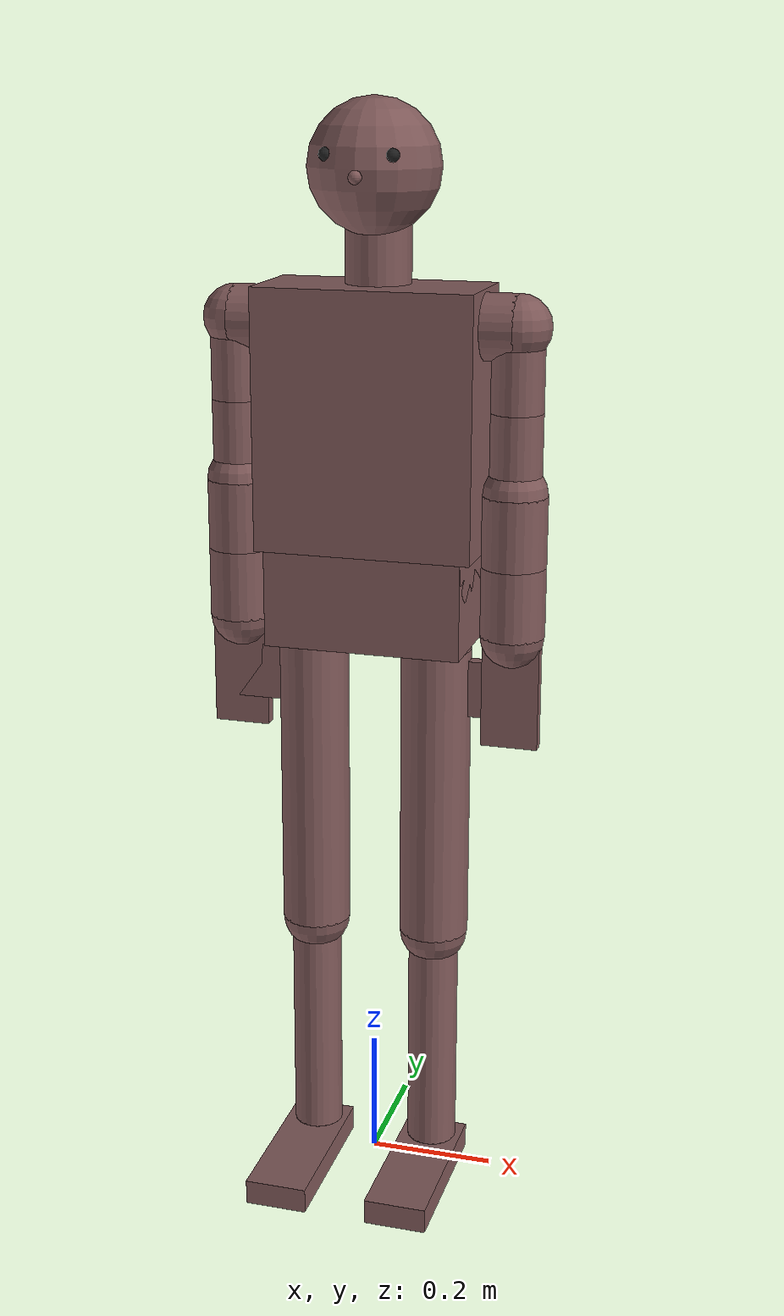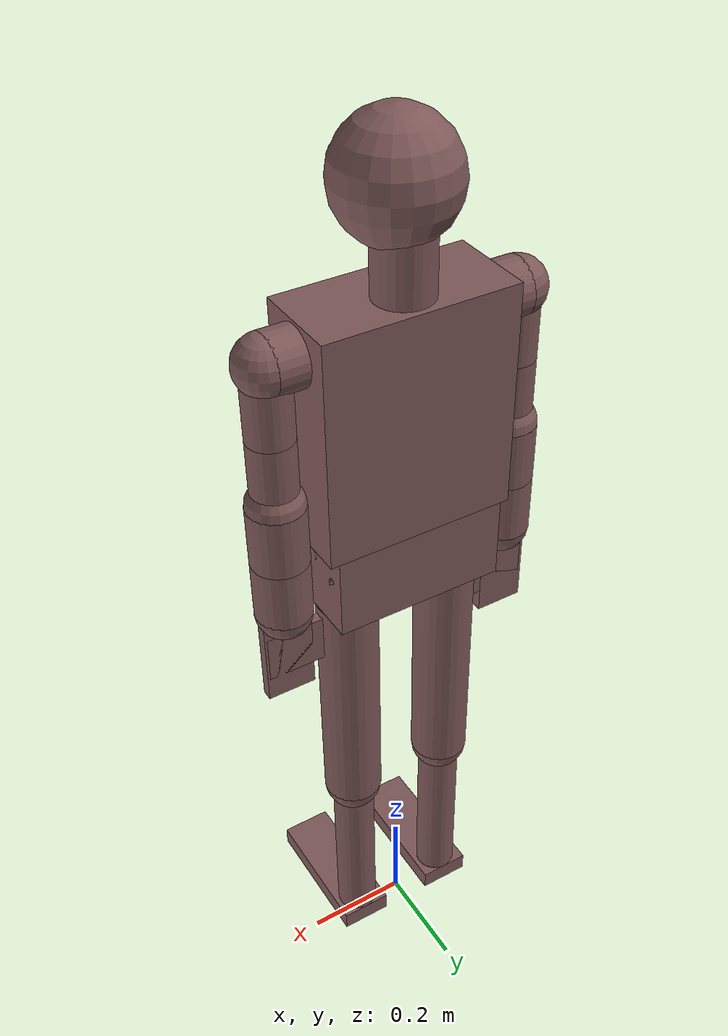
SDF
<?xml version="1.0" ?>
<sdf version="1.5">
  <model name="victim175">
    <static>false</static>
    <self_collide>false</self_collide>

    <link name="head">
      <pose>0 0 1.625 0 0 0</pose>
      <inertial>
        <mass>1.0</mass>
        <inertia>
          <ixx>0.00175</ixx>
          <ixy>0</ixy>
          <ixz>0</ixz>
          <iyy>0.00175</iyy>
          <iyz>0</iyz>
          <izz>0.00175</izz>
        </inertia>
      </inertial>
      <visual name="visual">
        <pose>0 0 0 0 0 0</pose>
        <geometry>
          <sphere><radius>0.1</radius></sphere>
        </geometry>
        <!-- HOT -->
        <material>
          <emissive>0.5 0.35 0.35 1</emissive>
          <ambient>0.5 0.35 0.35 1</ambient>
          <diffuse>0.5 0.35 0.35 1</diffuse>
          <specular>0 0 0 0</specular>
        </material> -->
      </visual>
      <collision name="collision">
        <pose>0 0 0 0 0 0</pose>
        <geometry>
          <sphere><radius>0.1</radius></sphere>
        </geometry>
      </collision>
      <visual name="visual_nose">
        <pose>0 -0.1 -0.01 0 0 0</pose>
        <geometry>
          <sphere><radius>0.01</radius></sphere>
        </geometry>
        <!-- HOT -->
        <material>
          <emissive>0.5 0.35 0.35 1</emissive>
          <ambient>0.5 0.35 0.35 1</ambient>
          <diffuse>0.5 0.35 0.35 1</diffuse>
          <specular>0 0 0 0</specular>
        </material> -->
      </visual>
      <visual name="visual_rEye">
        <pose>-0.05 -0.08 0.02 0 0 0</pose>
        <geometry>
          <sphere><radius>0.01</radius></sphere>
        </geometry>
        <material>
          <script>
            <uri>file://media/materials/scripts/gazebo.material</uri>
            <name>Gazebo/Black</name>
          </script>
        </material>
      </visual>
      <visual name="visual_lEye">
        <pose>0.05 -0.08 0.02 0 0 0</pose>
        <geometry>
          <sphere><radius>0.01</radius></sphere>
        </geometry>
        <material>
          <script>
            <uri>file://media/materials/scripts/gazebo.material</uri>
            <name>Gazebo/Black</name>
          </script>
        </material>
      </visual>
    </link>

    <link name="neck">
      <pose>0 0.02 1.49 0 0 0</pose>
      <inertial>
        <mass>1.0</mass>
        <inertia>
          <ixx>0.00175</ixx>
          <ixy>0</ixy>
          <ixz>0</ixz>
          <iyy>0.00175</iyy>
          <iyz>0</iyz>
          <izz>0.00175</izz>
        </inertia>
      </inertial>
      <visual name="visual">
        <pose>0 0 0 0 0 0</pose>
        <geometry>
          <cylinder><radius>0.05</radius><length>0.15</length></cylinder>
        </geometry>
        <!-- HOT -->
        <material>
          <emissive>0.5 0.35 0.35 1</emissive>
          <ambient>0.5 0.35 0.35 1</ambient>
          <diffuse>0.5 0.35 0.35 1</diffuse>
          <specular>0 0 0 0</specular>
        </material> -->
      </visual>
      <collision name="collision">
        <pose>0 0 0 0 0 0</pose>
        <geometry>
          <cylinder><radius>0.05</radius><length>0.15</length></cylinder>
        </geometry>
      </collision>
    </link>

    <joint type="revolute" name="neck_head">
      <pose>0 0.02 -0.075 0 0 0</pose>
      <child>head</child>
      <parent>neck</parent>
      <axis>
        <xyz>0 0 -1</xyz>
        <limit>
          <lower>-1.7</lower>
          <upper>+1.7</upper>
        </limit>
        <dynamics>
          <friction>0.1</friction>
        </dynamics>
      </axis>
    </joint>

    <link name="body">
      <pose>0 0 1.255 0 0 0</pose>
      <inertial>
        <mass>1.0</mass>
        <inertia>
          <ixx>0.00175</ixx>
          <ixy>0</ixy>
          <ixz>0</ixz>
          <iyy>0.00175</iyy>
          <iyz>0</iyz>
          <izz>0.00175</izz>
        </inertia>
      </inertial>
      <visual name="visual">
        <pose>0 0 0 0 0 0</pose>
        <geometry>
          <box><size>0.34 0.16 0.4</size></box>
        </geometry>
        <!-- HOT -->
        <material>
          <emissive>0.5 0.35 0.35 1</emissive>
          <ambient>0.5 0.35 0.35 1</ambient>
          <diffuse>0.5 0.35 0.35 1</diffuse>
          <specular>0 0 0 0</specular>
        </material> -->
      </visual>
      <collision name="collision">
        <pose>0 0 0 0 0 0</pose>
        <geometry>
          <box><size>0.34 0.16 0.4</size></box>
        </geometry>
      </collision>
    </link>

    <joint type="revolute" name="body_neck">
      <pose>0 0.06 -0.075 0 0 0</pose>
      <child>neck</child>
      <parent>body</parent>
      <axis>
        <xyz>1 0 0</xyz>
        <limit>
          <lower>-0.2</lower>
          <upper>1</upper>
        </limit>
        <dynamics>
          <friction>0.1</friction>
        </dynamics>
      </axis>
    </joint>

    <link name="waist">
      <pose>0 0 1.005 0 0 0</pose>
      <inertial>
        <mass>1.0</mass>
        <inertia>
          <ixx>0.00175</ixx>
          <ixy>0</ixy>
          <ixz>0</ixz>
          <iyy>0.00175</iyy>
          <iyz>0</iyz>
          <izz>0.00175</izz>
        </inertia>
      </inertial>
      <visual name="visual">
        <pose>0 0 -0.025 0 0 0</pose>
        <geometry>
          <box><size>0.31 0.16 0.15</size></box>
        </geometry>
        <!-- HOT -->
        <material>
          <emissive>0.5 0.35 0.35 1</emissive>
          <ambient>0.5 0.35 0.35 1</ambient>
          <diffuse>0.5 0.35 0.35 1</diffuse>
          <specular>0 0 0 0</specular>
        </material> -->
      </visual>
      <collision name="collision">
        <pose>0 0 0 0 0 0</pose>
        <geometry>
          <box><size>0.31 0.16 0.1</size></box>
        </geometry>
      </collision>
      <visual name="visual2">
        <pose>0 0 0.05 0 1.570796326794897 0</pose>
        <geometry>
          <cylinder><radius>0.08</radius><length>0.31</length></cylinder>
        </geometry>
        <!-- HOT -->
        <material>
          <emissive>0.5 0.35 0.35 1</emissive>
          <ambient>0.5 0.35 0.35 1</ambient>
          <diffuse>0.5 0.35 0.35 1</diffuse>
          <specular>0 0 0 0</specular>
        </material> -->
      </visual>
      <collision name="collision2">
        <pose>0 0 0.05 0 1.570796326794897 0</pose>
        <geometry>
          <cylinder><radius>0.08</radius><length>0.31</length></cylinder>
        </geometry>
      </collision>
    </link>

    <joint type="revolute" name="body_waist">
      <pose>0 0 0.05 0 0 0</pose>
      <child>waist</child>
      <parent>body</parent>
      <axis>
        <xyz>-1 0 0</xyz>
        <limit>
          <lower>0</lower>
          <upper>0</upper>
        </limit>
        <dynamics>
          <friction>0.1</friction>
        </dynamics>
      </axis>
    </joint>

    <link name="rHand">
      <pose>-0.22 0 0.84 0 0 0</pose>
      <inertial>
        <mass>1.0</mass>
        <inertia>
          <ixx>0.00175</ixx>
          <ixy>0</ixy>
          <ixz>0</ixz>
          <iyy>0.00175</iyy>
          <iyz>0</iyz>
          <izz>0.00175</izz>
        </inertia>
      </inertial>
      <visual name="visual">
        <pose>0 0 0 0 0 0</pose>
        <geometry>
          <box><size>0.09 0.02 0.18</size></box>
        </geometry>
        <!-- HOT -->
        <material>
          <emissive>0.5 0.35 0.35 1</emissive>
          <ambient>0.5 0.35 0.35 1</ambient>
          <diffuse>0.5 0.35 0.35 1</diffuse>
          <specular>0 0 0 0</specular>
        </material> -->
      </visual>
      <collision name="collision">
        <pose>0 0 0 0 0 0</pose>
        <geometry>
          <box><size>0.09 0.02 0.18</size></box>
        </geometry>
      </collision>
      <visual name="visual2">
        <pose>0.02 0 0 0 0 0</pose>
        <geometry>
          <box><size>0.12 0.02 0.09</size></box>
        </geometry>
        <!-- HOT -->
        <material>
          <emissive>0.5 0.35 0.35 1</emissive>
          <ambient>0.5 0.35 0.35 1</ambient>
          <diffuse>0.5 0.35 0.35 1</diffuse>
          <specular>0 0 0 0</specular>
        </material> -->
      </visual>
      <collision name="collision2">
        <pose>0.02 0 0 0 0 0</pose>
        <geometry>
          <box><size>0.12 0.02 0.09</size></box>
        </geometry>
      </collision>
    </link>

    <link name="lHand">
      <pose>0.22 0 0.84 0 0 0</pose>
      <inertial>
        <mass>1.0</mass>
        <inertia>
          <ixx>0.00175</ixx>
          <ixy>0</ixy>
          <ixz>0</ixz>
          <iyy>0.00175</iyy>
          <iyz>0</iyz>
          <izz>0.00175</izz>
        </inertia>
      </inertial>
      <visual name="visual">
        <pose>0 0 0 0 0 0</pose>
        <geometry>
          <box><size>0.09 0.02 0.18</size></box>
        </geometry>
        <!-- HOT -->
        <material>
          <emissive>0.5 0.35 0.35 1</emissive>
          <ambient>0.5 0.35 0.35 1</ambient>
          <diffuse>0.5 0.35 0.35 1</diffuse>
          <specular>0 0 0 0</specular>
        </material> -->
      </visual>
      <collision name="collision">
        <pose>0 0 0 0 0 0</pose>
        <geometry>
          <box><size>0.09 0.02 0.18</size></box>
        </geometry>
      </collision>
      <visual name="visual2">
        <pose>-0.02 0 0 0 0 0</pose>
        <geometry>
          <box><size>0.12 0.02 0.09</size></box>
        </geometry>
        <!-- HOT -->
        <material>
          <emissive>0.5 0.35 0.35 1</emissive>
          <ambient>0.5 0.35 0.35 1</ambient>
          <diffuse>0.5 0.35 0.35 1</diffuse>
          <specular>0 0 0 0</specular>
        </material> -->
      </visual>
      <collision name="collision2">
        <pose>-0.02 0 0 0 0 0</pose>
        <geometry>
          <box><size>0.12 0.02 0.09</size></box>
        </geometry>
      </collision>
    </link>

    <link name="rFoot">
      <pose>-0.1 -0.095 0.02 0 0 0</pose>
      <inertial>
        <mass>1.0</mass>
        <inertia>
          <ixx>0.00175</ixx>
          <ixy>0</ixy>
          <ixz>0</ixz>
          <iyy>0.00175</iyy>
          <iyz>0</iyz>
          <izz>0.00175</izz>
        </inertia>
      </inertial>
      <visual name="visual">
        <pose>0 0 0 0 0 0</pose>
        <geometry>
          <box><size>0.1 0.27 0.04</size></box>
        </geometry>
        <!-- HOT -->
        <material>
          <emissive>0.5 0.35 0.35 1</emissive>
          <ambient>0.5 0.35 0.35 1</ambient>
          <diffuse>0.5 0.35 0.35 1</diffuse>
          <specular>0 0 0 0</specular>
        </material> -->
      </visual>
      <collision name="collision">
        <pose>0 0 0 0 0 0</pose>
        <geometry>
          <box><size>0.1 0.27 0.04</size></box>
        </geometry>
      </collision>
    </link>

    <link name="lFoot">
      <pose>0.1 -0.095 0.02 0 0 0</pose>
      <inertial>
        <mass>1.0</mass>
        <inertia>
          <ixx>0.00175</ixx>
          <ixy>0</ixy>
          <ixz>0</ixz>
          <iyy>0.00175</iyy>
          <iyz>0</iyz>
          <izz>0.00175</izz>
        </inertia>
      </inertial>
      <visual name="visual">
        <pose>0 0 0 0 0 0</pose>
        <geometry>
          <box><size>0.1 0.27 0.04</size></box>
        </geometry>
        <!-- HOT -->
        <material>
          <emissive>0.5 0.35 0.35 1</emissive>
          <ambient>0.5 0.35 0.35 1</ambient>
          <diffuse>0.5 0.35 0.35 1</diffuse>
          <specular>0 0 0 0</specular>
        </material> -->
      </visual>
      <collision name="collision">
        <pose>0 0 0 0 0 0</pose>
        <geometry>
          <box><size>0.1 0.27 0.04</size></box>
        </geometry>
      </collision>
    </link>

    <link name="rLeg2">
      <pose>-0.1 0 0.23 0 0 0</pose>
      <inertial>
        <mass>1.0</mass>
        <inertia>
          <ixx>0.00175</ixx>
          <ixy>0</ixy>
          <ixz>0</ixz>
          <iyy>0.00175</iyy>
          <iyz>0</iyz>
          <izz>0.00175</izz>
        </inertia>
      </inertial>
      <visual name="visual">
        <pose>0 0 0 0 0 0</pose>
        <geometry>
          <cylinder><radius>0.04</radius><length>0.38</length></cylinder>
        </geometry>
        <!-- HOT -->
        <material>
          <emissive>0.5 0.35 0.35 1</emissive>
          <ambient>0.5 0.35 0.35 1</ambient>
          <diffuse>0.5 0.35 0.35 1</diffuse>
          <specular>0 0 0 0</specular>
        </material> -->
      </visual>
      <collision name="collision">
        <pose>0 0 0 0 0 0</pose>
        <geometry>
          <cylinder><radius>0.04</radius><length>0.38</length></cylinder>
        </geometry>
      </collision>
      <visual name="visual2">
        <pose>0 0 -0.19 0 0 0</pose>
        <geometry>
          <sphere><radius>0.04</radius></sphere>
        </geometry>
        <!-- HOT -->
        <material>
          <emissive>0.5 0.35 0.35 1</emissive>
          <ambient>0.5 0.35 0.35 1</ambient>
          <diffuse>0.5 0.35 0.35 1</diffuse>
          <specular>0 0 0 0</specular>
        </material> -->
      </visual>
      <collision name="collision2">
        <pose>0 0 -0.19 0 0 0</pose>
        <geometry>
          <sphere><radius>0.04</radius></sphere>
        </geometry>
      </collision>
    </link>

    <link name="lLeg2">
      <pose>0.1 0 0.23 0 0 0</pose>
      <inertial>
        <mass>1.0</mass>
        <inertia>
          <ixx>0.00175</ixx>
          <ixy>0</ixy>
          <ixz>0</ixz>
          <iyy>0.00175</iyy>
          <iyz>0</iyz>
          <izz>0.00175</izz>
        </inertia>
      </inertial>
      <visual name="visual">
        <pose>0 0 0 0 0 0</pose>
        <geometry>
          <cylinder><radius>0.04</radius><length>0.38</length></cylinder>
        </geometry>
        <!-- HOT -->
        <material>
          <emissive>0.5 0.35 0.35 1</emissive>
          <ambient>0.5 0.35 0.35 1</ambient>
          <diffuse>0.5 0.35 0.35 1</diffuse>
          <specular>0 0 0 0</specular>
        </material> -->
      </visual>
      <collision name="collision">
        <pose>0 0 0 0 0 0</pose>
        <geometry>
          <cylinder><radius>0.04</radius><length>0.38</length></cylinder>
        </geometry>
      </collision>
      <visual name="visual2">
        <pose>0 0 -0.19 0 0 0</pose>
        <geometry>
          <sphere><radius>0.04</radius></sphere>
        </geometry>
        <!-- HOT -->
        <material>
          <emissive>0.5 0.35 0.35 1</emissive>
          <ambient>0.5 0.35 0.35 1</ambient>
          <diffuse>0.5 0.35 0.35 1</diffuse>
          <specular>0 0 0 0</specular>
        </material> -->
      </visual>
      <collision name="collision2">
        <pose>0 0 -0.19 0 0 0</pose>
        <geometry>
          <sphere><radius>0.04</radius></sphere>
        </geometry>
      </collision>
    </link>

    <joint type="revolute" name="rLeg2_rFoot">
      <pose>0 0.095 0.02 0 0 0</pose>
      <child>rFoot</child>
      <parent>rLeg2</parent>
      <axis>
        <xyz>1 0 0</xyz>
        <limit>
          <lower>0</lower>
          <upper>0</upper>
        </limit>
        <dynamics>
          <friction>0.1</friction>
        </dynamics>
      </axis>
    </joint>

    <joint type="revolute" name="lLeg2_lFoot">
      <pose>0 0.095 0.02 0 0 0</pose>
      <child>lFoot</child>
      <parent>lLeg2</parent>
      <axis>
        <xyz>1 0 0</xyz>
        <limit>
          <lower>0</lower>
          <upper>0</upper>
        </limit>
        <dynamics>
          <friction>0.1</friction>
        </dynamics>
      </axis>
    </joint>

    <link name="rLeg1">
      <pose>-0.1 0 0.66 0 0 0</pose>
      <inertial>
        <mass>1.0</mass>
        <inertia>
          <ixx>0.00175</ixx>
          <ixy>0</ixy>
          <ixz>0</ixz>
          <iyy>0.00175</iyy>
          <iyz>0</iyz>
          <izz>0.00175</izz>
        </inertia>
      </inertial>
      <visual name="visual">
        <pose>0 0 0 0 0 0</pose>
        <geometry>
          <cylinder><radius>0.055</radius><length>0.48</length></cylinder>
        </geometry>
        <!-- HOT -->
        <material>
          <emissive>0.5 0.35 0.35 1</emissive>
          <ambient>0.5 0.35 0.35 1</ambient>
          <diffuse>0.5 0.35 0.35 1</diffuse>
          <specular>0 0 0 0</specular>
        </material> -->
      </visual>
      <collision name="collision">
        <pose>0 0 0 0 0 0</pose>
        <geometry>
          <cylinder><radius>0.055</radius><length>0.48</length></cylinder>
        </geometry>
      </collision>
      <visual name="visual2">
        <pose>0 0 -0.24 0 0 0</pose>
        <geometry>
          <sphere><radius>0.055</radius></sphere>
        </geometry>
        <!-- HOT -->
        <material>
          <emissive>0.5 0.35 0.35 1</emissive>
          <ambient>0.5 0.35 0.35 1</ambient>
          <diffuse>0.5 0.35 0.35 1</diffuse>
          <specular>0 0 0 0</specular>
        </material> -->
      </visual>
      <collision name="collision2">
        <pose>0 0 -0.24 0 0 0</pose>
        <geometry>
          <sphere><radius>0.055</radius></sphere>
        </geometry>
      </collision>
      <visual name="visual3">
        <pose>0 0 0.24 0 0 0</pose>
        <geometry>
          <sphere><radius>0.055</radius></sphere>
        </geometry>
        <!-- HOT -->
        <material>
          <emissive>0.5 0.35 0.35 1</emissive>
          <ambient>0.5 0.35 0.35 1</ambient>
          <diffuse>0.5 0.35 0.35 1</diffuse>
          <specular>0 0 0 0</specular>
        </material> -->
      </visual>
      <collision name="collision3">
        <pose>0 0 0.24 0 0 0</pose>
        <geometry>
          <sphere><radius>0.055</radius></sphere>
        </geometry>
      </collision>
    </link>

    <link name="lLeg1">
      <pose>0.1 0 0.66 0 0 0</pose>
      <inertial>
        <mass>1.0</mass>
        <inertia>
          <ixx>0.00175</ixx>
          <ixy>0</ixy>
          <ixz>0</ixz>
          <iyy>0.00175</iyy>
          <iyz>0</iyz>
          <izz>0.00175</izz>
        </inertia>
      </inertial>
      <visual name="visual">
        <pose>0 0 0 0 0 0</pose>
        <geometry>
          <cylinder><radius>0.055</radius><length>0.48</length></cylinder>
        </geometry>
        <!-- HOT -->
        <material>
          <emissive>0.5 0.35 0.35 1</emissive>
          <ambient>0.5 0.35 0.35 1</ambient>
          <diffuse>0.5 0.35 0.35 1</diffuse>
          <specular>0 0 0 0</specular>
        </material> -->
      </visual>
      <collision name="collision">
        <pose>0 0 0 0 0 0</pose>
        <geometry>
          <cylinder><radius>0.055</radius><length>0.48</length></cylinder>
        </geometry>
      </collision>
      <visual name="visual2">
        <pose>0 0 -0.24 0 0 0</pose>
        <geometry>
          <sphere><radius>0.055</radius></sphere>
        </geometry>
        <!-- HOT -->
        <material>
          <emissive>0.5 0.35 0.35 1</emissive>
          <ambient>0.5 0.35 0.35 1</ambient>
          <diffuse>0.5 0.35 0.35 1</diffuse>
          <specular>0 0 0 0</specular>
        </material> -->
      </visual>
      <collision name="collision2">
        <pose>0 0 -0.24 0 0 0</pose>
        <geometry>
          <sphere><radius>0.055</radius></sphere>
        </geometry>
      </collision>
      <visual name="visual3">
        <pose>0 0 0.24 0 0 0</pose>
        <geometry>
          <sphere><radius>0.055</radius></sphere>
        </geometry>
        <!-- HOT -->
        <material>
          <emissive>0.5 0.35 0.35 1</emissive>
          <ambient>0.5 0.35 0.35 1</ambient>
          <diffuse>0.5 0.35 0.35 1</diffuse>
          <specular>0 0 0 0</specular>
        </material> -->
      </visual>
      <collision name="collision3">
        <pose>0 0 0.24 0 0 0</pose>
        <geometry>
          <sphere><radius>0.055</radius></sphere>
        </geometry>
      </collision>
    </link>

    <joint type="revolute" name="rLeg1_rLeg2">
      <pose>0 0 0.19 0 0 0</pose>
      <child>rLeg2</child>
      <parent>rLeg1</parent>
      <axis>
        <xyz>1 0 0</xyz>
        <limit>
          <lower>0</lower>
          <upper>0</upper>
        </limit>
        <dynamics>
          <friction>0.1</friction>
        </dynamics>
      </axis>
    </joint>

    <joint type="revolute" name="lLeg1_lLeg2">
      <pose>0 0 0.19 0 0 0</pose>
      <child>lLeg2</child>
      <parent>lLeg1</parent>
      <axis>
        <xyz>1 0 0</xyz>
        <limit>
          <lower>0</lower>
          <upper>0</upper>
        </limit>
        <dynamics>
          <friction>0.1</friction>
        </dynamics>
      </axis>
    </joint>

    <link name="rButt">
      <pose>-0.1 0 0.9275 0 0 0</pose>
      <inertial>
        <mass>1.0</mass>
        <inertia>
          <ixx>0.00175</ixx>
          <ixy>0</ixy>
          <ixz>0</ixz>
          <iyy>0.00175</iyy>
          <iyz>0</iyz>
          <izz>0.00175</izz>
        </inertia>
      </inertial>
      <visual name="visual">
        <pose>0 0 0 0 0 0</pose>
        <geometry>
          <cylinder><radius>0.055</radius><length>0.055</length></cylinder>
        </geometry>
        <!-- HOT -->
        <material>
          <emissive>0.5 0.35 0.35 1</emissive>
          <ambient>0.5 0.35 0.35 1</ambient>
          <diffuse>0.5 0.35 0.35 1</diffuse>
          <specular>0 0 0 0</specular>
        </material> -->
      </visual>
      <collision name="collision">
        <pose>0 0 0 0 0 0</pose>
        <geometry>
          <cylinder><radius>0.055</radius><length>0.055</length></cylinder>
        </geometry>
      </collision>
    </link>

    <link name="lButt">
      <pose>0.1 0 0.9275 0 0 0</pose>
      <inertial>
        <mass>1.0</mass>
        <inertia>
          <ixx>0.00175</ixx>
          <ixy>0</ixy>
          <ixz>0</ixz>
          <iyy>0.00175</iyy>
          <iyz>0</iyz>
          <izz>0.00175</izz>
        </inertia>
      </inertial>
      <visual name="visual">
        <pose>0 0 0 0 0 0</pose>
        <geometry>
          <cylinder><radius>0.055</radius><length>0.055</length></cylinder>
        </geometry>
        <!-- HOT -->
        <material>
          <emissive>0.5 0.35 0.35 1</emissive>
          <ambient>0.5 0.35 0.35 1</ambient>
          <diffuse>0.5 0.35 0.35 1</diffuse>
          <specular>0 0 0 0</specular>
        </material> -->
      </visual>
      <collision name="collision">
        <pose>0 0 0 0 0 0</pose>
        <geometry>
          <cylinder><radius>0.055</radius><length>0.055</length></cylinder>
        </geometry>
      </collision>
    </link>

    <joint type="revolute" name="rButt_rLeg1">
      <pose>0 0 0.24 0 0 0</pose>
      <child>rLeg1</child>
      <parent>rButt</parent>
      <axis>
        <xyz>1 0 0</xyz>
        <limit>
          <lower>0</lower>
          <upper>0</upper>
        </limit>
        <dynamics>
          <friction>0.1</friction>
        </dynamics>
      </axis>
    </joint>

    <joint type="revolute" name="lButt_lLeg1">
      <pose>0 0 0.24 0 0 0</pose>
      <child>lLeg1</child>
      <parent>lButt</parent>
      <axis>
        <xyz>1 0 0</xyz>
        <limit>
          <lower>0</lower>
          <upper>0</upper>
        </limit>
        <dynamics>
          <friction>0.1</friction>
        </dynamics>
      </axis>
    </joint>

    <joint type="revolute" name="waist_rButt">
      <pose>0 0 0 0 0 0</pose>
      <child>rButt</child>
      <parent>waist</parent>
      <axis>
        <xyz>0 0 -1</xyz>
        <limit>
          <lower>0</lower>
          <upper>0</upper>
        </limit>
        <dynamics>
          <friction>0.1</friction>
        </dynamics>
      </axis>
    </joint>

    <joint type="revolute" name="waist_lButt">
      <pose>0 0 0 0 0 0</pose>
      <child>lButt</child>
      <parent>waist</parent>
      <axis>
        <xyz>0 0 1</xyz>
        <limit>
          <lower>0</lower>
          <upper>0</upper>
        </limit>
        <dynamics>
          <friction>0.1</friction>
        </dynamics>
      </axis>
    </joint>

    <link name="rShoulder">
      <pose>-0.195 0 1.4 0 0 0</pose>
      <inertial>
        <mass>1.0</mass>
        <inertia>
          <ixx>0.00175</ixx>
          <ixy>0</ixy>
          <ixz>0</ixz>
          <iyy>0.00175</iyy>
          <iyz>0</iyz>
          <izz>0.00175</izz>
        </inertia>
      </inertial>
      <visual name="visual">
        <pose>0 0 0 0 1.570796326794897 0</pose>
        <geometry>
          <cylinder><radius>0.05</radius><length>0.05</length></cylinder>
        </geometry>
        <!-- HOT -->
        <material>
          <emissive>0.5 0.35 0.35 1</emissive>
          <ambient>0.5 0.35 0.35 1</ambient>
          <diffuse>0.5 0.35 0.35 1</diffuse>
          <specular>0 0 0 0</specular>
        </material> -->
      </visual>
      <collision name="collision">
        <pose>0 0 0 0 1.570796326794897 0</pose>
        <geometry>
          <cylinder><radius>0.05</radius><length>0.05</length></cylinder>
        </geometry>
      </collision>
    </link>

    <link name="lShoulder">
      <pose>0.195 0 1.4 0 0 0</pose>
      <inertial>
        <mass>1.0</mass>
        <inertia>
          <ixx>0.00175</ixx>
          <ixy>0</ixy>
          <ixz>0</ixz>
          <iyy>0.00175</iyy>
          <iyz>0</iyz>
          <izz>0.00175</izz>
        </inertia>
      </inertial>
      <visual name="visual">
        <pose>0 0 0 0 1.570796326794897 0</pose>
        <geometry>
          <cylinder><radius>0.05</radius><length>0.05</length></cylinder>
        </geometry>
        <!-- HOT -->
        <material>
          <emissive>0.5 0.35 0.35 1</emissive>
          <ambient>0.5 0.35 0.35 1</ambient>
          <diffuse>0.5 0.35 0.35 1</diffuse>
          <specular>0 0 0 0</specular>
        </material> -->
      </visual>
      <collision name="collision">
        <pose>0 0 0 0 1.570796326794897 0</pose>
        <geometry>
          <cylinder><radius>0.05</radius><length>0.05</length></cylinder>
        </geometry>
      </collision>
    </link>

    <joint type="revolute" name="body_rShoulder">
      <pose>0 0 0 0 0 0</pose>
      <child>rShoulder</child>
      <parent>body</parent>
      <axis>
        <xyz>-1 0 0</xyz>
        <limit>
          <lower>-1.570796326794897</lower>
          <upper>+3.2</upper>
        </limit>
        <dynamics>
          <friction>0.1</friction>
        </dynamics>
      </axis>
    </joint>

    <joint type="revolute" name="body_lShoulder">
      <pose>0 0 0 0 0 0</pose>
      <child>lShoulder</child>
      <parent>body</parent>
      <axis>
        <xyz>1 0 0</xyz>
        <limit>
          <lower>0</lower>
          <upper>0</upper>
        </limit>
        <dynamics>
          <friction>0.1</friction>
        </dynamics>
      </axis>
    </joint>

    <link name="rArm1U">
      <pose>-0.22 0 1.3375 0 0 0</pose>
      <inertial>
        <mass>1.0</mass>
        <inertia>
          <ixx>0.00175</ixx>
          <ixy>0</ixy>
          <ixz>0</ixz>
          <iyy>0.00175</iyy>
          <iyz>0</iyz>
          <izz>0.00175</izz>
        </inertia>
      </inertial>
      <visual name="visual">
        <pose>0 0 0 0 0 0</pose>
        <geometry>
          <cylinder><radius>0.04</radius><length>0.125</length></cylinder>
        </geometry>
        <!-- HOT -->
        <material>
          <emissive>0.5 0.35 0.35 1</emissive>
          <ambient>0.5 0.35 0.35 1</ambient>
          <diffuse>0.5 0.35 0.35 1</diffuse>
          <specular>0 0 0 0</specular>
        </material> -->
      </visual>
      <collision name="collision">
        <pose>0 0 0 0 0 0</pose>
        <geometry>
          <cylinder><radius>0.04</radius><length>0.125</length></cylinder>
        </geometry>
      </collision>
      <visual name="visual2">
        <pose>0 0 0.0625 0 0 0</pose>
        <geometry>
          <sphere><radius>0.05</radius></sphere>
        </geometry>
        <!-- HOT -->
        <material>
          <emissive>0.5 0.35 0.35 1</emissive>
          <ambient>0.5 0.35 0.35 1</ambient>
          <diffuse>0.5 0.35 0.35 1</diffuse>
          <specular>0 0 0 0</specular>
        </material> -->
      </visual>
      <collision name="collision2">
        <pose>0 0 0.0625 0 0 0</pose>
        <geometry>
          <sphere><radius>0.05</radius></sphere>
        </geometry>
      </collision>
    </link>

    <link name="rArm1L">
      <pose>-0.22 0 1.2125 0 0 0</pose>
      <inertial>
        <mass>1.0</mass>
        <inertia>
          <ixx>0.00175</ixx>
          <ixy>0</ixy>
          <ixz>0</ixz>
          <iyy>0.00175</iyy>
          <iyz>0</iyz>
          <izz>0.00175</izz>
        </inertia>
      </inertial>
      <visual name="visual">
        <pose>0 0 0 0 0 0</pose>
        <geometry>
          <cylinder><radius>0.04</radius><length>0.125</length></cylinder>
        </geometry>
        <!-- HOT -->
        <material>
          <emissive>0.5 0.35 0.35 1</emissive>
          <ambient>0.5 0.35 0.35 1</ambient>
          <diffuse>0.5 0.35 0.35 1</diffuse>
          <specular>0 0 0 0</specular>
        </material> -->
      </visual>
      <collision name="collision">
        <pose>0 0 0 0 0 0</pose>
        <geometry>
          <cylinder><radius>0.04</radius><length>0.125</length></cylinder>
        </geometry>
      </collision>
      <visual name="visual2">
        <pose>0 0 -0.0625 0 0 0</pose>
        <geometry>
          <sphere><radius>0.05</radius></sphere>
        </geometry>
        <!-- HOT -->
        <material>
          <emissive>0.5 0.35 0.35 1</emissive>
          <ambient>0.5 0.35 0.35 1</ambient>
          <diffuse>0.5 0.35 0.35 1</diffuse>
          <specular>0 0 0 0</specular>
        </material> -->
      </visual>
      <collision name="collision2">
        <pose>0 0 -0.0625 0 0 0</pose>
        <geometry>
          <sphere><radius>0.05</radius></sphere>
        </geometry>
      </collision>
    </link>

    <joint type="revolute" name="rArm1U_rArm1L">
      <pose>0 0 0.0625 0 0 0</pose>
      <child>rArm1L</child>
      <parent>rArm1U</parent>
      <axis>
        <xyz>0 0 -1</xyz>
        <limit>
          <lower>-1.570796326794897</lower>
          <upper>+1.570796326794897</upper>
        </limit>
        <dynamics>
          <friction>0.1</friction>
        </dynamics>
      </axis>
    </joint>

    <link name="lArm1U">
      <pose>0.22 0 1.3375 0 0 0</pose>
      <inertial>
        <mass>1.0</mass>
        <inertia>
          <ixx>0.00175</ixx>
          <ixy>0</ixy>
          <ixz>0</ixz>
          <iyy>0.00175</iyy>
          <iyz>0</iyz>
          <izz>0.00175</izz>
        </inertia>
      </inertial>
      <visual name="visual">
        <pose>0 0 0 0 0 0</pose>
        <geometry>
          <cylinder><radius>0.04</radius><length>0.125</length></cylinder>
        </geometry>
        <!-- HOT -->
        <material>
          <emissive>0.5 0.35 0.35 1</emissive>
          <ambient>0.5 0.35 0.35 1</ambient>
          <diffuse>0.5 0.35 0.35 1</diffuse>
          <specular>0 0 0 0</specular>
        </material> -->
      </visual>
      <collision name="collision">
        <pose>0 0 0 0 0 0</pose>
        <geometry>
          <cylinder><radius>0.04</radius><length>0.125</length></cylinder>
        </geometry>
      </collision>
      <visual name="visual2">
        <pose>0 0 0.0625 0 0 0</pose>
        <geometry>
          <sphere><radius>0.05</radius></sphere>
        </geometry>
        <!-- HOT -->
        <material>
          <emissive>0.5 0.35 0.35 1</emissive>
          <ambient>0.5 0.35 0.35 1</ambient>
          <diffuse>0.5 0.35 0.35 1</diffuse>
          <specular>0 0 0 0</specular>
        </material> -->
      </visual>
      <collision name="collision2">
        <pose>0 0 0.0625 0 0 0</pose>
        <geometry>
          <sphere><radius>0.05</radius></sphere>
        </geometry>
      </collision>
    </link>

    <link name="lArm1L">
      <pose>0.22 0 1.2125 0 0 0</pose>
      <inertial>
        <mass>1.0</mass>
        <inertia>
          <ixx>0.00175</ixx>
          <ixy>0</ixy>
          <ixz>0</ixz>
          <iyy>0.00175</iyy>
          <iyz>0</iyz>
          <izz>0.00175</izz>
        </inertia>
      </inertial>
      <visual name="visual">
        <pose>0 0 0 0 0 0</pose>
        <geometry>
          <cylinder><radius>0.04</radius><length>0.125</length></cylinder>
        </geometry>
        <!-- HOT -->
        <material>
          <emissive>0.5 0.35 0.35 1</emissive>
          <ambient>0.5 0.35 0.35 1</ambient>
          <diffuse>0.5 0.35 0.35 1</diffuse>
          <specular>0 0 0 0</specular>
        </material> -->
      </visual>
      <collision name="collision">
        <pose>0 0 0 0 0 0</pose>
        <geometry>
          <cylinder><radius>0.04</radius><length>0.125</length></cylinder>
        </geometry>
      </collision>
      <visual name="visual2">
        <pose>0 0 -0.0625 0 0 0</pose>
        <geometry>
          <sphere><radius>0.05</radius></sphere>
        </geometry>
        <!-- HOT -->
        <material>
          <emissive>0.5 0.35 0.35 1</emissive>
          <ambient>0.5 0.35 0.35 1</ambient>
          <diffuse>0.5 0.35 0.35 1</diffuse>
          <specular>0 0 0 0</specular>
        </material> -->
      </visual>
      <collision name="collision2">
        <pose>0 0 -0.0625 0 0 0</pose>
        <geometry>
          <sphere><radius>0.05</radius></sphere>
        </geometry>
      </collision>
    </link>

    <joint type="revolute" name="lArm1U_lArm1L">
      <pose>0 0 0.0625 0 0 0</pose>
      <child>lArm1L</child>
      <parent>lArm1U</parent>
      <axis>
        <xyz>0 0 1</xyz>
        <limit>
          <lower>-1.570796326794897</lower>
          <upper>+1.570796326794897</upper>
        </limit>
        <dynamics>
          <friction>0.1</friction>
        </dynamics>
      </axis>
    </joint>

    <joint type="revolute" name="rShoulder_rArm1">
      <pose>0 0 0.0625 0 0 0</pose>
      <child>rArm1U</child>
      <parent>rShoulder</parent>
      <axis>
        <xyz>0 -1 0</xyz>
        <limit>
          <lower>-1.570796326794897</lower>
          <upper>+3.2</upper>
        </limit>
        <dynamics>
          <friction>0.1</friction>
        </dynamics>
      </axis>
    </joint>

    <joint type="revolute" name="lShoulder_lArm1">
      <pose>0 0 0.0625 0 0 0</pose>
      <child>lArm1U</child>
      <parent>lShoulder</parent>
      <axis>
        <xyz>0 1 0</xyz>
        <limit>
          <lower>0</lower>
          <upper>0</upper>
        </limit>
        <dynamics>
          <friction>0.1</friction>
        </dynamics>
      </axis>
    </joint>

    <link name="rArm2U">
      <pose>-0.22 0 1.095 0 0 0</pose>
      <inertial>
        <mass>1.0</mass>
        <inertia>
          <ixx>0.00175</ixx>
          <ixy>0</ixy>
          <ixz>0</ixz>
          <iyy>0.00175</iyy>
          <iyz>0</iyz>
          <izz>0.00175</izz>
        </inertia>
      </inertial>
      <visual name="visual">
        <pose>0 0 0 0 0 0</pose>
        <geometry>
          <cylinder><radius>0.05</radius><length>0.11</length></cylinder>
        </geometry>
        <!-- HOT -->
        <material>
          <emissive>0.5 0.35 0.35 1</emissive>
          <ambient>0.5 0.35 0.35 1</ambient>
          <diffuse>0.5 0.35 0.35 1</diffuse>
          <specular>0 0 0 0</specular>
        </material> -->
      </visual>
      <collision name="collision">
        <pose>0 0 0 0 0 0</pose>
        <geometry>
          <cylinder><radius>0.05</radius><length>0.11</length></cylinder>
        </geometry>
      </collision>
    </link>

    <link name="rArm2L">
      <pose>-0.22 0 0.985 0 0 0</pose>
      <inertial>
        <mass>1.0</mass>
        <inertia>
          <ixx>0.00175</ixx>
          <ixy>0</ixy>
          <ixz>0</ixz>
          <iyy>0.00175</iyy>
          <iyz>0</iyz>
          <izz>0.00175</izz>
        </inertia>
      </inertial>
      <visual name="visual">
        <pose>0 0 0 0 0 0</pose>
        <geometry>
          <cylinder><radius>0.05</radius><length>0.11</length></cylinder>
        </geometry>
        <!-- HOT -->
        <material>
          <emissive>0.5 0.35 0.35 1</emissive>
          <ambient>0.5 0.35 0.35 1</ambient>
          <diffuse>0.5 0.35 0.35 1</diffuse>
          <specular>0 0 0 0</specular>
        </material> -->
      </visual>
      <collision name="collision">
        <pose>0 0 0 0 0 0</pose>
        <geometry>
          <cylinder><radius>0.05</radius><length>0.11</length></cylinder>
        </geometry>
      </collision>
      <visual name="visual2">
        <pose>0 0 -0.055 0 0 0</pose>
        <geometry>
          <sphere><radius>0.05</radius></sphere>
        </geometry>
        <!-- HOT -->
        <material>
          <emissive>0.5 0.35 0.35 1</emissive>
          <ambient>0.5 0.35 0.35 1</ambient>
          <diffuse>0.5 0.35 0.35 1</diffuse>
          <specular>0 0 0 0</specular>
        </material> -->
      </visual>
      <collision name="collision2">
        <pose>0 0 -0.055 0 0 0</pose>
        <geometry>
          <sphere><radius>0.05</radius></sphere>
        </geometry>
      </collision>
    </link>

    <joint type="revolute" name="rArm2U_rArm2L">
      <pose>0 0 0.055 0 0 0</pose>
      <child>rArm2L</child>
      <parent>rArm2U</parent>
      <axis>
        <xyz>0 0 -1</xyz>
        <limit>
          <lower>-1.570796326794897</lower>
          <upper>+1.570796326794897</upper>
        </limit>
        <dynamics>
          <friction>0.1</friction>
        </dynamics>
      </axis>
    </joint>

    <link name="lArm2U">
      <pose>0.22 0 1.095 0 0 0</pose>
      <inertial>
        <mass>1.0</mass>
        <inertia>
          <ixx>0.00175</ixx>
          <ixy>0</ixy>
          <ixz>0</ixz>
          <iyy>0.00175</iyy>
          <iyz>0</iyz>
          <izz>0.00175</izz>
        </inertia>
      </inertial>
      <visual name="visual">
        <pose>0 0 0 0 0 0</pose>
        <geometry>
          <cylinder><radius>0.05</radius><length>0.11</length></cylinder>
        </geometry>
        <!-- HOT -->
        <material>
          <emissive>0.5 0.35 0.35 1</emissive>
          <ambient>0.5 0.35 0.35 1</ambient>
          <diffuse>0.5 0.35 0.35 1</diffuse>
          <specular>0 0 0 0</specular>
        </material> -->
      </visual>
      <collision name="collision">
        <pose>0 0 0 0 0 0</pose>
        <geometry>
          <cylinder><radius>0.05</radius><length>0.11</length></cylinder>
        </geometry>
      </collision>
    </link>

    <link name="lArm2L">
      <pose>0.22 0 0.985 0 0 0</pose>
      <inertial>
        <mass>1.0</mass>
        <inertia>
          <ixx>0.00175</ixx>
          <ixy>0</ixy>
          <ixz>0</ixz>
          <iyy>0.00175</iyy>
          <iyz>0</iyz>
          <izz>0.00175</izz>
        </inertia>
      </inertial>
      <visual name="visual">
        <pose>0 0 0 0 0 0</pose>
        <geometry>
          <cylinder><radius>0.05</radius><length>0.11</length></cylinder>
        </geometry>
        <!-- HOT -->
        <material>
          <emissive>0.5 0.35 0.35 1</emissive>
          <ambient>0.5 0.35 0.35 1</ambient>
          <diffuse>0.5 0.35 0.35 1</diffuse>
          <specular>0 0 0 0</specular>
        </material> -->
      </visual>
      <collision name="collision">
        <pose>0 0 0 0 0 0</pose>
        <geometry>
          <cylinder><radius>0.05</radius><length>0.11</length></cylinder>
        </geometry>
      </collision>
      <visual name="visual2">
        <pose>0 0 -0.055 0 0 0</pose>
        <geometry>
          <sphere><radius>0.05</radius></sphere>
        </geometry>
        <!-- HOT -->
        <material>
          <emissive>0.5 0.35 0.35 1</emissive>
          <ambient>0.5 0.35 0.35 1</ambient>
          <diffuse>0.5 0.35 0.35 1</diffuse>
          <specular>0 0 0 0</specular>
        </material> -->
      </visual>
      <collision name="collision2">
        <pose>0 0 -0.055 0 0 0</pose>
        <geometry>
          <sphere><radius>0.05</radius></sphere>
        </geometry>
      </collision>
    </link>

    <joint type="revolute" name="lArm2U_lArm2L">
      <pose>0 0 0.055 0 0 0</pose>
      <child>lArm2L</child>
      <parent>lArm2U</parent>
      <axis>
        <xyz>0 0 1</xyz>
        <limit>
          <lower>0</lower>
          <upper>0</upper>
        </limit>
        <dynamics>
          <friction>0.1</friction>
        </dynamics>
      </axis>
    </joint>

    <joint type="revolute" name="rArm1_rArm2">
      <pose>0 0 0.055 0 0 0</pose>
      <child>rArm2U</child>
      <parent>rArm1L</parent>
      <axis>
        <xyz>-1 0 0</xyz>
        <limit>
          <lower>0</lower>
          <upper>2.8</upper>
        </limit>
        <dynamics>
          <friction>0.1</friction>
        </dynamics>
      </axis>
    </joint>

    <joint type="revolute" name="lArm1_lArm2">
      <pose>0 0 0.055 0 0 0</pose>
      <child>lArm2U</child>
      <parent>lArm1L</parent>
      <axis>
        <xyz>-1 0 0</xyz>
        <limit>
          <lower>0</lower>
          <upper>0</upper>
        </limit>
        <dynamics>
          <friction>0.1</friction>
        </dynamics>
      </axis>
    </joint>

    <joint type="revolute" name="rArm2_rHand">
      <pose>0 0 0.09 0 0 0</pose>
      <child>rHand</child>
      <parent>rArm2L</parent>
      <axis>
        <xyz>-1 0 0</xyz>
        <limit>
          <lower>-1.57</lower>
          <upper>1.4</upper>
        </limit>
        <dynamics>
          <friction>0.1</friction>
        </dynamics>
      </axis>
    </joint>

    <joint type="revolute" name="lArm2_lHand">
      <pose>0 0 0.09 0 0 0</pose>
      <child>lHand</child>
      <parent>lArm2L</parent>
      <axis>
        <xyz>-1 0 0</xyz>
        <limit>
          <lower>0</lower>
          <upper>0</upper>
        </limit>
        <dynamics>
          <friction>0.1</friction>
        </dynamics>
      </axis>
    </joint>

    <joint type="revolute" name="world_rFoot">
      <pose>0 0 0 0 0 0</pose>
      <child>rFoot</child>
      <parent>world</parent>
      <axis>
        <xyz>0 0 1</xyz>
        <limit>
          <lower>0</lower>
          <upper>0</upper>
        </limit>
      </axis>
    </joint>

    <joint type="revolute" name="world_lFoot">
      <pose>0 0 0 0 0 0</pose>
      <child>lFoot</child>
      <parent>world</parent>
      <axis>
        <xyz>0 0 1</xyz>
        <limit>
          <lower>0</lower>
          <upper>0</upper>
        </limit>
      </axis>
    </joint>

    <plugin name="setJointAngle" filename="libset_joint_angle.so">
      <robotNamespace>victim175</robotNamespace>
      <alwaysOn>true</alwaysOn>
      <updateRate>100.0</updateRate>
      <angleName0>neck_head</angleName0>
      <angleName1>body_neck</angleName1>
      <angleName11>body_rShoulder</angleName11>
      <angleName13>rArm1U_rArm1L</angleName13>
      <angleName15>rShoulder_rArm1</angleName15>
      <angleName17>rArm2U_rArm2L</angleName17>
      <angleName19>rArm1_rArm2</angleName19>
      <angleName21>rArm2_rHand</angleName21>

      <maxAngles>23</maxAngles>
      <neck_head>10</neck_head>
      <body_neck>0.0</body_neck>
      <body_waist>0.0</body_waist>
      <rLeg2_rFoot>0.0</rLeg2_rFoot>
      <lLeg2_lFoot>0.0</lLeg2_lFoot>
      <rLeg1_rLeg2>0.0</rLeg1_rLeg2>
      <lLeg1_lLeg2>0.0</lLeg1_lLeg2>
      <rButt_rLeg1>0.0</rButt_rLeg1>
      <lButt_lLeg1>0.0</lButt_lLeg1>
      <waist_rButt>0.0</waist_rButt>
      <waist_lButt>0.0</waist_lButt>
      <body_rShoulder>45</body_rShoulder>
      <body_lShoulder>0.0</body_lShoulder>
      <rArm1U_rArm1L>-5</rArm1U_rArm1L>
      <lArm1U_lArm1L>0.0</lArm1U_lArm1L>
      <rShoulder_rArm1>0.0</rShoulder_rArm1>
      <lShoulder_lArm1>0.0</lShoulder_lArm1>
      <rArm2U_rArm2L>0.0</rArm2U_rArm2L>
      <lArm2U_lArm2L>90.0</lArm2U_lArm2L>
      <rArm1_rArm2>90</rArm1_rArm2>
      <lArm1_lArm2>0.0</lArm1_lArm2>
      <rArm2_rHand>45</rArm2_rHand>
      <lArm2_lHand>0.0</lArm2_lHand>
      <moveOn>1</moveOn>
      <moveJoint>13</moveJoint>
      <moveAngleWidth>30</moveAngleWidth>
    </plugin>

  </model>
</sdf>
